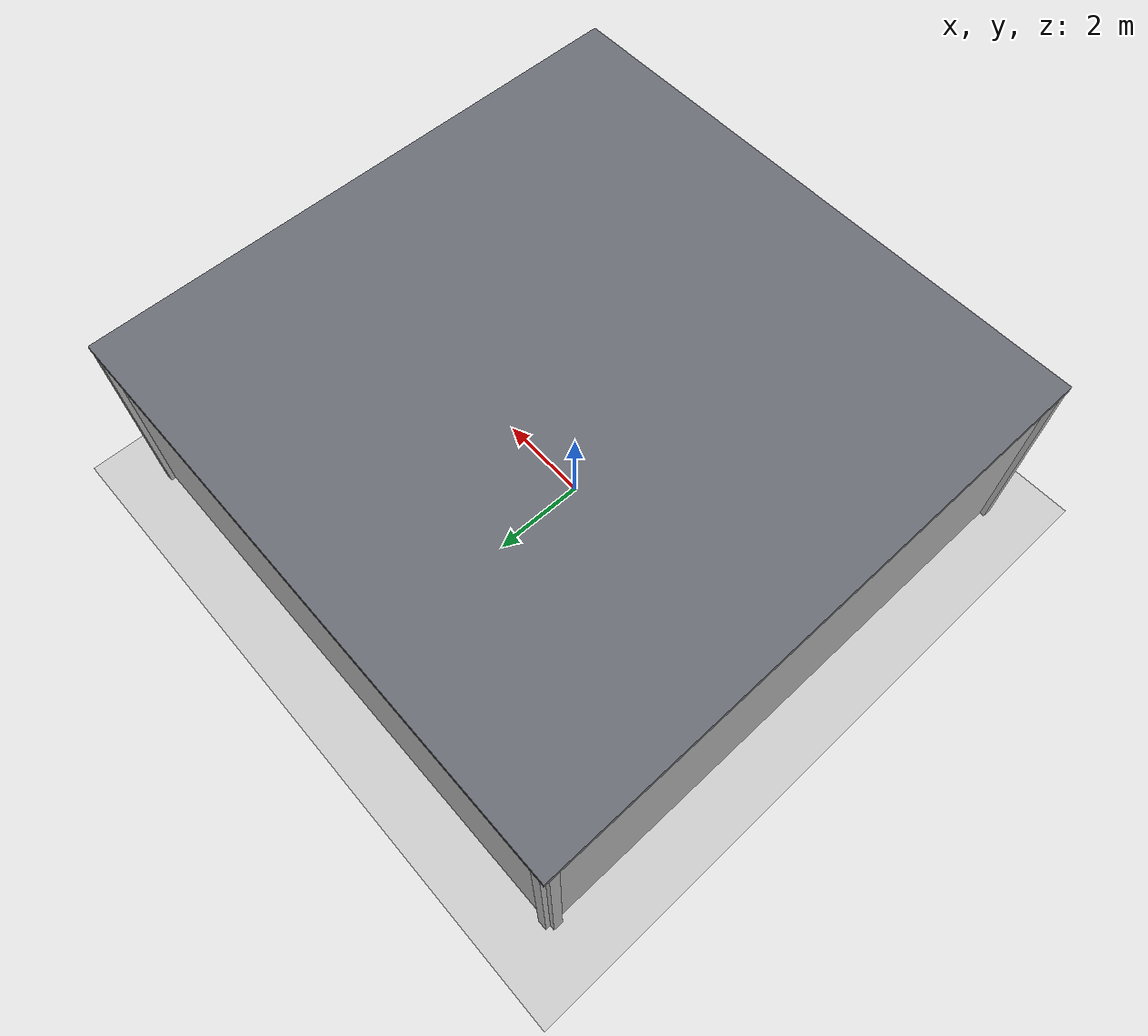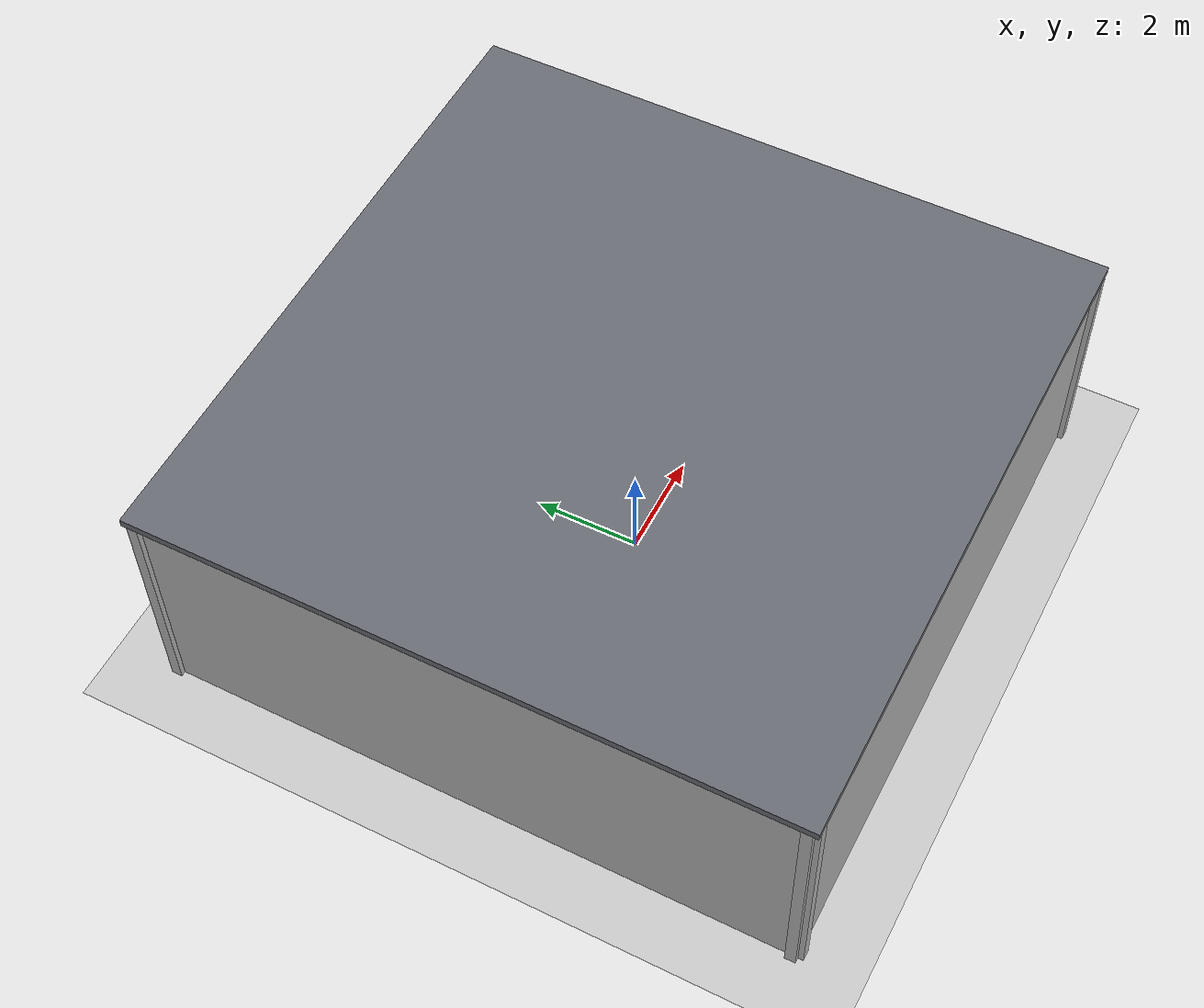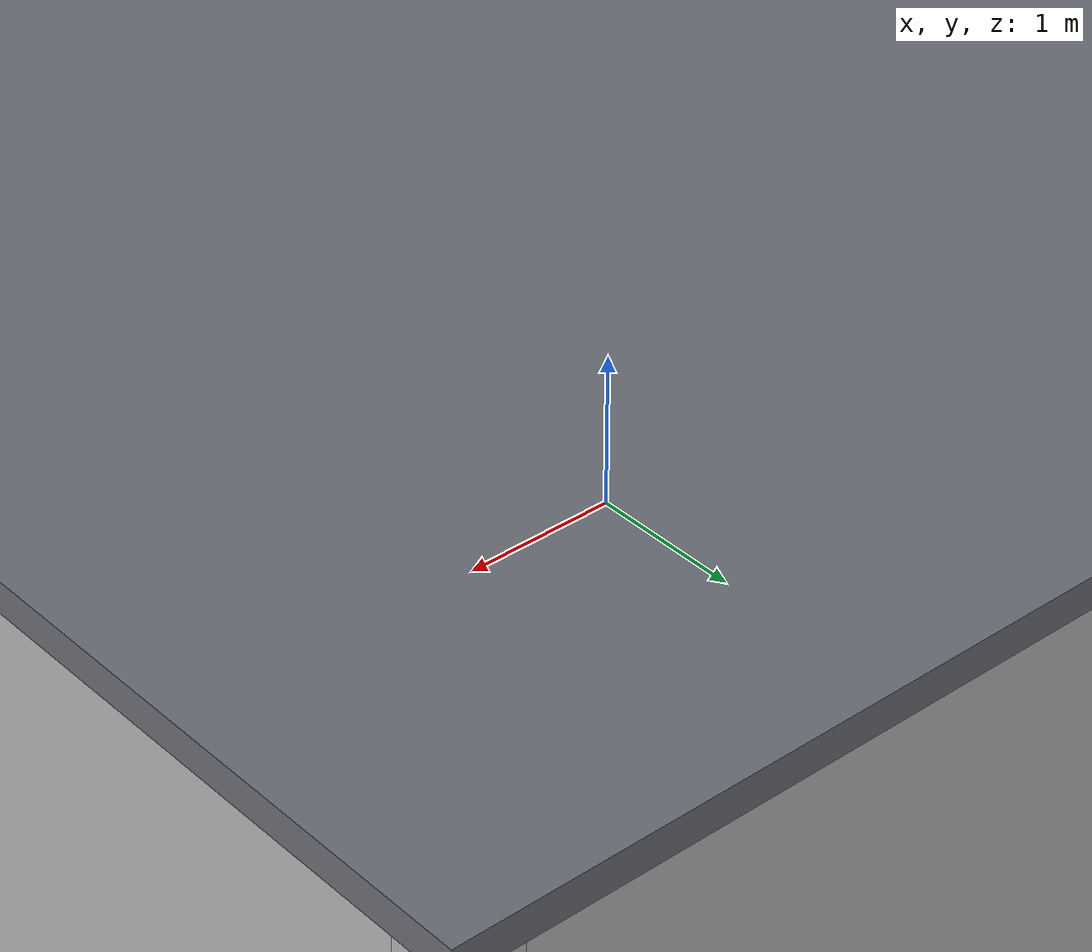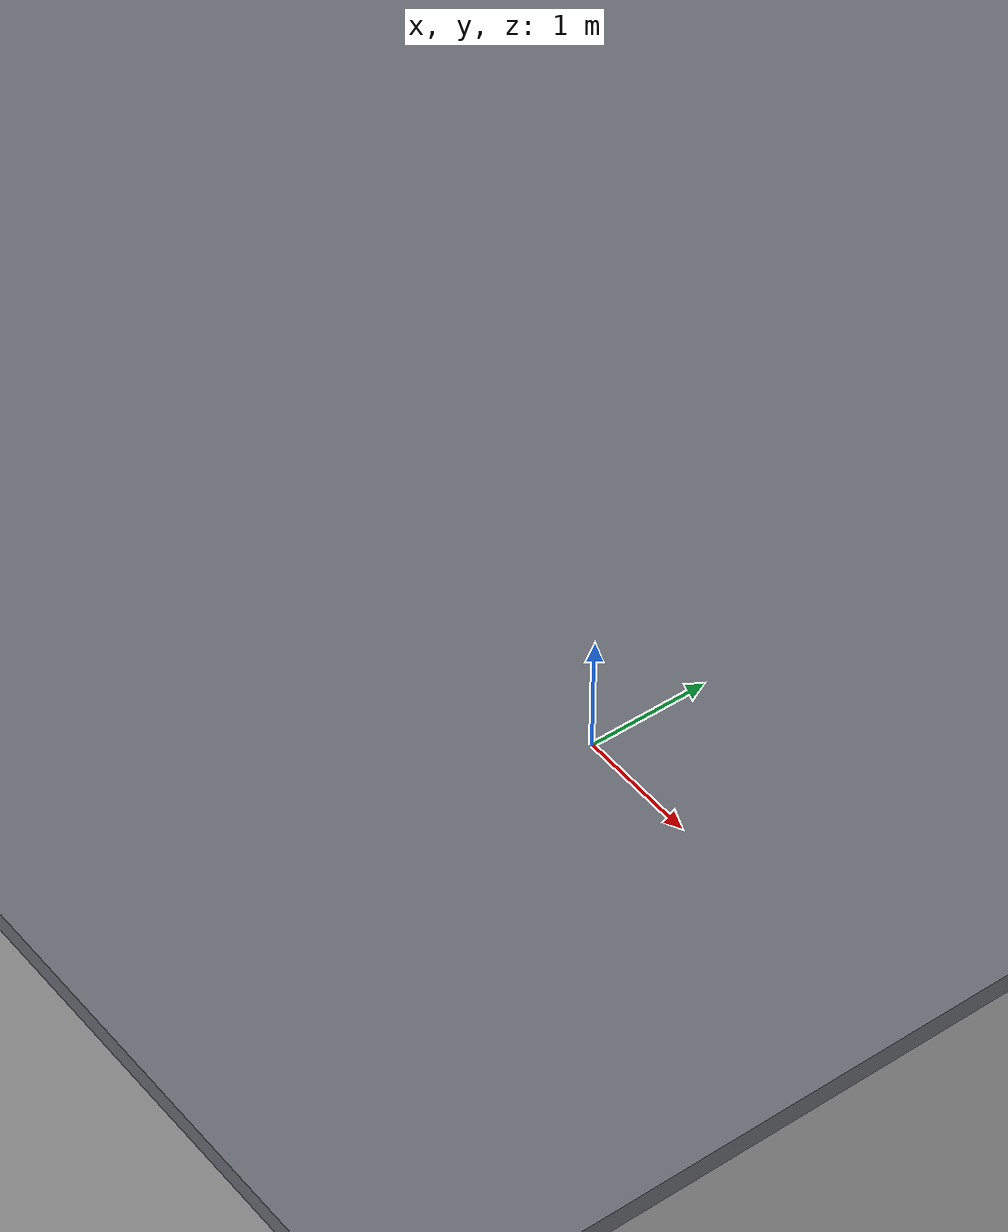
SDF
<?xml version="1.0"?>
<sdf version="1.6">
  <world name="mrf_sorting">

    <gravity>0 0 -9.81</gravity>

    <physics name="default" type="ode">
      <max_step_size>0.001</max_step_size>
      <real_time_update_rate>1000</real_time_update_rate>
    </physics>

    <scene>
      <ambient>0.32 0.32 0.34 1</ambient>
      <background>0.70 0.72 0.75 1</background>
      <shadows>false</shadows>
      <!-- procedural blue sky with drifting white clouds (rendered by the
           Gazebo client; replaces the plain grey background outside) -->
      <sky>
        <clouds>
          <speed>8</speed>
          <direction>1.2</direction>
          <humidity>0.55</humidity>
          <mean_size>0.7</mean_size>
        </clouds>
      </sky>
    </scene>

    <plugin name="gazebo_ros_state" filename="libgazebo_ros_state.so">
      <ros><namespace>/gazebo</namespace></ros>
      <update_rate>50.0</update_rate>
    </plugin>

    <!-- soft, shadowless key light (replaces the default sun) -->
    <light name="sun" type="directional">
      <pose>0 0 12 0 0 0</pose>
      <diffuse>0.42 0.42 0.40 1</diffuse>
      <specular>0.05 0.05 0.05 1</specular>
      <direction>-0.3 0.35 -1</direction>
      <cast_shadows>false</cast_shadows>
    </light>
    <!-- industrial concrete floor (replaces the default grey ground_plane) -->
    <include><uri>model://concrete_floor</uri></include>

    <light name="fill_light" type="directional">
      <pose>-3 -3 6 0 0 0</pose>
      <diffuse>0.12 0.12 0.13 1</diffuse>
      <specular>0.02 0.02 0.02 1</specular>
      <direction>0.4 0.4 -1</direction>
      <cast_shadows>false</cast_shadows>
    </light>

    <!-- ================= robot pedestals (white stands) ================= -->
    <model name="robot_pedestal">
      <static>true</static>
      <pose>0 0 0.4 0 0 0</pose>
      <link name="link">
        <visual name="v">
          <geometry><box><size>0.5 0.5 0.8</size></box></geometry>
          <material><ambient>0.9 0.9 0.9 1</ambient><diffuse>0.95 0.95 0.95 1</diffuse></material>
        </visual>
        <collision name="c">
          <geometry><box><size>0.5 0.5 0.8</size></box></geometry>
        </collision>
      </link>
    </model>

    <!-- ================= conveyor belt ================= -->
    <model name="conveyor_belt">
      <static>true</static>
      <pose>0 -0.55 0 0 0 0</pose>
      <link name="link">
        <!-- belt surface (top at z=0.85) -->
        <visual name="belt">
          <pose>0 0 0.825 0 0 0</pose>
          <geometry><box><size>3.0 0.5 0.05</size></box></geometry>
          <material><ambient>0.2 0.2 0.2 1</ambient><diffuse>0.25 0.25 0.25 1</diffuse></material>
        </visual>
        <collision name="belt_c">
          <pose>0 0 0.825 0 0 0</pose>
          <geometry><box><size>3.0 0.5 0.05</size></box></geometry>
        </collision>
        <!-- side rails -->
        <visual name="rail_n">
          <pose>0 0.26 0.86 0 0 0</pose>
          <geometry><box><size>3.0 0.03 0.06</size></box></geometry>
          <material><ambient>0.6 0.6 0.6 1</ambient><diffuse>0.7 0.7 0.7 1</diffuse></material>
        </visual>
        <visual name="rail_s">
          <pose>0 -0.26 0.86 0 0 0</pose>
          <geometry><box><size>3.0 0.03 0.06</size></box></geometry>
          <material><ambient>0.6 0.6 0.6 1</ambient><diffuse>0.7 0.7 0.7 1</diffuse></material>
        </visual>
        <!-- legs -->
        <visual name="leg1"><pose>-1.4 0 0.4 0 0 0</pose><geometry><box><size>0.06 0.5 0.8</size></box></geometry><material><ambient>0.5 0.5 0.5 1</ambient></material></visual>
        <visual name="leg2"><pose>1.4 0 0.4 0 0 0</pose><geometry><box><size>0.06 0.5 0.8</size></box></geometry><material><ambient>0.5 0.5 0.5 1</ambient></material></visual>
      </link>
    </model>
    <!-- wire-mesh safety guarding around the cell -->
    <include><uri>model://safety_fence</uri></include>
    <!-- WAREHOUSE BEGIN -->
    <include><uri>model://warehouse</uri></include>
    <light name="pendant0" type="point">
      <pose>-3 -3 3.40 0 0 0</pose>
      <diffuse>0.22 0.21 0.19 1</diffuse>
      <specular>0.02 0.02 0.02 1</specular>
      <attenuation><range>9</range><constant>0.6</constant><linear>0.18</linear><quadratic>0.04</quadratic></attenuation>
      <cast_shadows>false</cast_shadows>
    </light>
    <light name="pendant1" type="point">
      <pose>-3 3 3.40 0 0 0</pose>
      <diffuse>0.22 0.21 0.19 1</diffuse>
      <specular>0.02 0.02 0.02 1</specular>
      <attenuation><range>9</range><constant>0.6</constant><linear>0.18</linear><quadratic>0.04</quadratic></attenuation>
      <cast_shadows>false</cast_shadows>
    </light>
    <light name="pendant2" type="point">
      <pose>0 -3 3.40 0 0 0</pose>
      <diffuse>0.22 0.21 0.19 1</diffuse>
      <specular>0.02 0.02 0.02 1</specular>
      <attenuation><range>9</range><constant>0.6</constant><linear>0.18</linear><quadratic>0.04</quadratic></attenuation>
      <cast_shadows>false</cast_shadows>
    </light>
    <light name="pendant3" type="point">
      <pose>0 3 3.40 0 0 0</pose>
      <diffuse>0.22 0.21 0.19 1</diffuse>
      <specular>0.02 0.02 0.02 1</specular>
      <attenuation><range>9</range><constant>0.6</constant><linear>0.18</linear><quadratic>0.04</quadratic></attenuation>
      <cast_shadows>false</cast_shadows>
    </light>
    <light name="pendant4" type="point">
      <pose>3 -3 3.40 0 0 0</pose>
      <diffuse>0.22 0.21 0.19 1</diffuse>
      <specular>0.02 0.02 0.02 1</specular>
      <attenuation><range>9</range><constant>0.6</constant><linear>0.18</linear><quadratic>0.04</quadratic></attenuation>
      <cast_shadows>false</cast_shadows>
    </light>
    <light name="pendant5" type="point">
      <pose>3 3 3.40 0 0 0</pose>
      <diffuse>0.22 0.21 0.19 1</diffuse>
      <specular>0.02 0.02 0.02 1</specular>
      <attenuation><range>9</range><constant>0.6</constant><linear>0.18</linear><quadratic>0.04</quadratic></attenuation>
      <cast_shadows>false</cast_shadows>
    </light>
    <!-- WAREHOUSE END -->
    <!-- four colour-coded labeled recycling bins -->
    <include><uri>model://recycle_bins</uri></include>

  </world>
</sdf>

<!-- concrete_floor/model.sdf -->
<sdf version="1.6">
  <model name="concrete_floor">
    <static>true</static>
    <link name="link">
      <collision name="collision">
        <geometry>
          <plane><normal>0 0 1</normal><size>100 100</size></plane>
        </geometry>
        <surface>
          <friction>
            <ode><mu>1.0</mu><mu2>1.0</mu2></ode>
          </friction>
        </surface>
      </collision>
      <visual name="visual">
        <cast_shadows>false</cast_shadows>
        <geometry>
          <plane><normal>0 0 1</normal><size>100 100</size></plane>
        </geometry>
        <material>
          <script>
            <uri>model://concrete_floor/materials/scripts</uri>
            <uri>model://concrete_floor/materials/textures</uri>
            <name>MRF/Concrete</name>
          </script>
        </material>
      </visual>
    </link>
  </model>
</sdf>

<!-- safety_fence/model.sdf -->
<sdf version="1.6">
  <model name="safety_fence">
    <static>true</static>
    <link name="link">
      <visual name="post0_v">
        <pose>-2.100 -2.000 0.600 0 0 0</pose>
        <geometry><box><size>0.090 0.090 1.200</size></box></geometry>
        <material><ambient>1.0 0.45 0.02 1.0</ambient><diffuse>1.0 0.45 0.02 1.0</diffuse></material>
      </visual>
      <collision name="post0_c">
        <pose>-2.100 -2.000 0.600 0 0 0</pose>
        <geometry><box><size>0.090 0.090 1.200</size></box></geometry>
      </collision>
      <visual name="post1_v">
        <pose>-2.100 -0.950 0.600 0 0 0</pose>
        <geometry><box><size>0.090 0.090 1.200</size></box></geometry>
        <material><ambient>1.0 0.45 0.02 1.0</ambient><diffuse>1.0 0.45 0.02 1.0</diffuse></material>
      </visual>
      <collision name="post1_c">
        <pose>-2.100 -0.950 0.600 0 0 0</pose>
        <geometry><box><size>0.090 0.090 1.200</size></box></geometry>
      </collision>
      <visual name="post2_v">
        <pose>-2.100 -0.150 0.600 0 0 0</pose>
        <geometry><box><size>0.090 0.090 1.200</size></box></geometry>
        <material><ambient>1.0 0.45 0.02 1.0</ambient><diffuse>1.0 0.45 0.02 1.0</diffuse></material>
      </visual>
      <collision name="post2_c">
        <pose>-2.100 -0.150 0.600 0 0 0</pose>
        <geometry><box><size>0.090 0.090 1.200</size></box></geometry>
      </collision>
      <visual name="post3_v">
        <pose>-2.100 1.000 0.600 0 0 0</pose>
        <geometry><box><size>0.090 0.090 1.200</size></box></geometry>
        <material><ambient>1.0 0.45 0.02 1.0</ambient><diffuse>1.0 0.45 0.02 1.0</diffuse></material>
      </visual>
      <collision name="post3_c">
        <pose>-2.100 1.000 0.600 0 0 0</pose>
        <geometry><box><size>0.090 0.090 1.200</size></box></geometry>
      </collision>
      <visual name="post4_v">
        <pose>-1.100 -2.000 0.600 0 0 0</pose>
        <geometry><box><size>0.090 0.090 1.200</size></box></geometry>
        <material><ambient>1.0 0.45 0.02 1.0</ambient><diffuse>1.0 0.45 0.02 1.0</diffuse></material>
      </visual>
      <collision name="post4_c">
        <pose>-1.100 -2.000 0.600 0 0 0</pose>
        <geometry><box><size>0.090 0.090 1.200</size></box></geometry>
      </collision>
      <visual name="post5_v">
        <pose>-1.100 1.000 0.600 0 0 0</pose>
        <geometry><box><size>0.090 0.090 1.200</size></box></geometry>
        <material><ambient>1.0 0.45 0.02 1.0</ambient><diffuse>1.0 0.45 0.02 1.0</diffuse></material>
      </visual>
      <collision name="post5_c">
        <pose>-1.100 1.000 0.600 0 0 0</pose>
        <geometry><box><size>0.090 0.090 1.200</size></box></geometry>
      </collision>
      <visual name="post6_v">
        <pose>-0.100 -2.000 0.600 0 0 0</pose>
        <geometry><box><size>0.090 0.090 1.200</size></box></geometry>
        <material><ambient>1.0 0.45 0.02 1.0</ambient><diffuse>1.0 0.45 0.02 1.0</diffuse></material>
      </visual>
      <collision name="post6_c">
        <pose>-0.100 -2.000 0.600 0 0 0</pose>
        <geometry><box><size>0.090 0.090 1.200</size></box></geometry>
      </collision>
      <visual name="post7_v">
        <pose>-0.100 1.000 0.600 0 0 0</pose>
        <geometry><box><size>0.090 0.090 1.200</size></box></geometry>
        <material><ambient>1.0 0.45 0.02 1.0</ambient><diffuse>1.0 0.45 0.02 1.0</diffuse></material>
      </visual>
      <collision name="post7_c">
        <pose>-0.100 1.000 0.600 0 0 0</pose>
        <geometry><box><size>0.090 0.090 1.200</size></box></geometry>
      </collision>
      <visual name="post8_v">
        <pose>0.900 -2.000 0.600 0 0 0</pose>
        <geometry><box><size>0.090 0.090 1.200</size></box></geometry>
        <material><ambient>1.0 0.45 0.02 1.0</ambient><diffuse>1.0 0.45 0.02 1.0</diffuse></material>
      </visual>
      <collision name="post8_c">
        <pose>0.900 -2.000 0.600 0 0 0</pose>
        <geometry><box><size>0.090 0.090 1.200</size></box></geometry>
      </collision>
      <visual name="post9_v">
        <pose>0.900 1.000 0.600 0 0 0</pose>
        <geometry><box><size>0.090 0.090 1.200</size></box></geometry>
        <material><ambient>1.0 0.45 0.02 1.0</ambient><diffuse>1.0 0.45 0.02 1.0</diffuse></material>
      </visual>
      <collision name="post9_c">
        <pose>0.900 1.000 0.600 0 0 0</pose>
        <geometry><box><size>0.090 0.090 1.200</size></box></geometry>
      </collision>
      <visual name="post10_v">
        <pose>1.900 -2.000 0.600 0 0 0</pose>
        <geometry><box><size>0.090 0.090 1.200</size></box></geometry>
        <material><ambient>1.0 0.45 0.02 1.0</ambient><diffuse>1.0 0.45 0.02 1.0</diffuse></material>
      </visual>
      <collision name="post10_c">
        <pose>1.900 -2.000 0.600 0 0 0</pose>
        <geometry><box><size>0.090 0.090 1.200</size></box></geometry>
      </collision>
      <visual name="post11_v">
        <pose>1.900 1.000 0.600 0 0 0</pose>
        <geometry><box><size>0.090 0.090 1.200</size></box></geometry>
        <material><ambient>1.0 0.45 0.02 1.0</ambient><diffuse>1.0 0.45 0.02 1.0</diffuse></material>
      </visual>
      <collision name="post11_c">
        <pose>1.900 1.000 0.600 0 0 0</pose>
        <geometry><box><size>0.090 0.090 1.200</size></box></geometry>
      </collision>
      <visual name="post12_v">
        <pose>2.300 -2.000 0.600 0 0 0</pose>
        <geometry><box><size>0.090 0.090 1.200</size></box></geometry>
        <material><ambient>1.0 0.45 0.02 1.0</ambient><diffuse>1.0 0.45 0.02 1.0</diffuse></material>
      </visual>
      <collision name="post12_c">
        <pose>2.300 -2.000 0.600 0 0 0</pose>
        <geometry><box><size>0.090 0.090 1.200</size></box></geometry>
      </collision>
      <visual name="post13_v">
        <pose>2.300 -0.950 0.600 0 0 0</pose>
        <geometry><box><size>0.090 0.090 1.200</size></box></geometry>
        <material><ambient>1.0 0.45 0.02 1.0</ambient><diffuse>1.0 0.45 0.02 1.0</diffuse></material>
      </visual>
      <collision name="post13_c">
        <pose>2.300 -0.950 0.600 0 0 0</pose>
        <geometry><box><size>0.090 0.090 1.200</size></box></geometry>
      </collision>
      <visual name="post14_v">
        <pose>2.300 -0.150 0.600 0 0 0</pose>
        <geometry><box><size>0.090 0.090 1.200</size></box></geometry>
        <material><ambient>1.0 0.45 0.02 1.0</ambient><diffuse>1.0 0.45 0.02 1.0</diffuse></material>
      </visual>
      <collision name="post14_c">
        <pose>2.300 -0.150 0.600 0 0 0</pose>
        <geometry><box><size>0.090 0.090 1.200</size></box></geometry>
      </collision>
      <visual name="post15_v">
        <pose>2.300 1.000 0.600 0 0 0</pose>
        <geometry><box><size>0.090 0.090 1.200</size></box></geometry>
        <material><ambient>1.0 0.45 0.02 1.0</ambient><diffuse>1.0 0.45 0.02 1.0</diffuse></material>
      </visual>
      <collision name="post15_c">
        <pose>2.300 1.000 0.600 0 0 0</pose>
        <geometry><box><size>0.090 0.090 1.200</size></box></geometry>
      </collision>
      <visual name="n0_panel_v">
        <pose>-1.600 1.000 0.600 0 0 0</pose>
        <geometry><box><size>0.910 0.020 1.000</size></box></geometry>
        <material><script>
          <uri>model://safety_fence/materials/scripts</uri>
          <uri>model://safety_fence/materials/textures</uri>
          <name>MRF/WireMesh</name>
        </script></material>
      </visual>
      <collision name="n0_panel_c">
        <pose>-1.600 1.000 0.600 0 0 0</pose>
        <geometry><box><size>0.910 0.020 1.000</size></box></geometry>
      </collision>
      <visual name="n0_rtop_v">
        <pose>-1.600 1.000 1.160 0 0 0</pose>
        <geometry><box><size>0.910 0.050 0.050</size></box></geometry>
        <material><ambient>1.0 0.45 0.02 1.0</ambient><diffuse>1.0 0.45 0.02 1.0</diffuse></material>
      </visual>
      <visual name="n0_rbot_v">
        <pose>-1.600 1.000 0.100 0 0 0</pose>
        <geometry><box><size>0.910 0.050 0.050</size></box></geometry>
        <material><ambient>1.0 0.45 0.02 1.0</ambient><diffuse>1.0 0.45 0.02 1.0</diffuse></material>
      </visual>
      <visual name="s0_panel_v">
        <pose>-1.600 -2.000 0.600 0 0 0</pose>
        <geometry><box><size>0.910 0.020 1.000</size></box></geometry>
        <material><script>
          <uri>model://safety_fence/materials/scripts</uri>
          <uri>model://safety_fence/materials/textures</uri>
          <name>MRF/WireMesh</name>
        </script></material>
      </visual>
      <collision name="s0_panel_c">
        <pose>-1.600 -2.000 0.600 0 0 0</pose>
        <geometry><box><size>0.910 0.020 1.000</size></box></geometry>
      </collision>
      <visual name="s0_rtop_v">
        <pose>-1.600 -2.000 1.160 0 0 0</pose>
        <geometry><box><size>0.910 0.050 0.050</size></box></geometry>
        <material><ambient>1.0 0.45 0.02 1.0</ambient><diffuse>1.0 0.45 0.02 1.0</diffuse></material>
      </visual>
      <visual name="s0_rbot_v">
        <pose>-1.600 -2.000 0.100 0 0 0</pose>
        <geometry><box><size>0.910 0.050 0.050</size></box></geometry>
        <material><ambient>1.0 0.45 0.02 1.0</ambient><diffuse>1.0 0.45 0.02 1.0</diffuse></material>
      </visual>
      <visual name="n1_panel_v">
        <pose>-0.600 1.000 0.600 0 0 0</pose>
        <geometry><box><size>0.910 0.020 1.000</size></box></geometry>
        <material><script>
          <uri>model://safety_fence/materials/scripts</uri>
          <uri>model://safety_fence/materials/textures</uri>
          <name>MRF/WireMesh</name>
        </script></material>
      </visual>
      <collision name="n1_panel_c">
        <pose>-0.600 1.000 0.600 0 0 0</pose>
        <geometry><box><size>0.910 0.020 1.000</size></box></geometry>
      </collision>
      <visual name="n1_rtop_v">
        <pose>-0.600 1.000 1.160 0 0 0</pose>
        <geometry><box><size>0.910 0.050 0.050</size></box></geometry>
        <material><ambient>1.0 0.45 0.02 1.0</ambient><diffuse>1.0 0.45 0.02 1.0</diffuse></material>
      </visual>
      <visual name="n1_rbot_v">
        <pose>-0.600 1.000 0.100 0 0 0</pose>
        <geometry><box><size>0.910 0.050 0.050</size></box></geometry>
        <material><ambient>1.0 0.45 0.02 1.0</ambient><diffuse>1.0 0.45 0.02 1.0</diffuse></material>
      </visual>
      <visual name="s1_panel_v">
        <pose>-0.600 -2.000 0.600 0 0 0</pose>
        <geometry><box><size>0.910 0.020 1.000</size></box></geometry>
        <material><script>
          <uri>model://safety_fence/materials/scripts</uri>
          <uri>model://safety_fence/materials/textures</uri>
          <name>MRF/WireMesh</name>
        </script></material>
      </visual>
      <collision name="s1_panel_c">
        <pose>-0.600 -2.000 0.600 0 0 0</pose>
        <geometry><box><size>0.910 0.020 1.000</size></box></geometry>
      </collision>
      <visual name="s1_rtop_v">
        <pose>-0.600 -2.000 1.160 0 0 0</pose>
        <geometry><box><size>0.910 0.050 0.050</size></box></geometry>
        <material><ambient>1.0 0.45 0.02 1.0</ambient><diffuse>1.0 0.45 0.02 1.0</diffuse></material>
      </visual>
      <visual name="s1_rbot_v">
        <pose>-0.600 -2.000 0.100 0 0 0</pose>
        <geometry><box><size>0.910 0.050 0.050</size></box></geometry>
        <material><ambient>1.0 0.45 0.02 1.0</ambient><diffuse>1.0 0.45 0.02 1.0</diffuse></material>
      </visual>
      <visual name="n2_panel_v">
        <pose>0.400 1.000 0.600 0 0 0</pose>
        <geometry><box><size>0.910 0.020 1.000</size></box></geometry>
        <material><script>
          <uri>model://safety_fence/materials/scripts</uri>
          <uri>model://safety_fence/materials/textures</uri>
          <name>MRF/WireMesh</name>
        </script></material>
      </visual>
      <collision name="n2_panel_c">
        <pose>0.400 1.000 0.600 0 0 0</pose>
        <geometry><box><size>0.910 0.020 1.000</size></box></geometry>
      </collision>
      <visual name="n2_rtop_v">
        <pose>0.400 1.000 1.160 0 0 0</pose>
        <geometry><box><size>0.910 0.050 0.050</size></box></geometry>
        <material><ambient>1.0 0.45 0.02 1.0</ambient><diffuse>1.0 0.45 0.02 1.0</diffuse></material>
      </visual>
      <visual name="n2_rbot_v">
        <pose>0.400 1.000 0.100 0 0 0</pose>
        <geometry><box><size>0.910 0.050 0.050</size></box></geometry>
        <material><ambient>1.0 0.45 0.02 1.0</ambient><diffuse>1.0 0.45 0.02 1.0</diffuse></material>
      </visual>
      <visual name="s2_panel_v">
        <pose>0.400 -2.000 0.600 0 0 0</pose>
        <geometry><box><size>0.910 0.020 1.000</size></box></geometry>
        <material><script>
          <uri>model://safety_fence/materials/scripts</uri>
          <uri>model://safety_fence/materials/textures</uri>
          <name>MRF/WireMesh</name>
        </script></material>
      </visual>
      <collision name="s2_panel_c">
        <pose>0.400 -2.000 0.600 0 0 0</pose>
        <geometry><box><size>0.910 0.020 1.000</size></box></geometry>
      </collision>
      <visual name="s2_rtop_v">
        <pose>0.400 -2.000 1.160 0 0 0</pose>
        <geometry><box><size>0.910 0.050 0.050</size></box></geometry>
        <material><ambient>1.0 0.45 0.02 1.0</ambient><diffuse>1.0 0.45 0.02 1.0</diffuse></material>
      </visual>
      <visual name="s2_rbot_v">
        <pose>0.400 -2.000 0.100 0 0 0</pose>
        <geometry><box><size>0.910 0.050 0.050</size></box></geometry>
        <material><ambient>1.0 0.45 0.02 1.0</ambient><diffuse>1.0 0.45 0.02 1.0</diffuse></material>
      </visual>
      <visual name="n3_panel_v">
        <pose>1.400 1.000 0.600 0 0 0</pose>
        <geometry><box><size>0.910 0.020 1.000</size></box></geometry>
        <material><script>
          <uri>model://safety_fence/materials/scripts</uri>
          <uri>model://safety_fence/materials/textures</uri>
          <name>MRF/WireMesh</name>
        </script></material>
      </visual>
      <collision name="n3_panel_c">
        <pose>1.400 1.000 0.600 0 0 0</pose>
        <geometry><box><size>0.910 0.020 1.000</size></box></geometry>
      </collision>
      <visual name="n3_rtop_v">
        <pose>1.400 1.000 1.160 0 0 0</pose>
        <geometry><box><size>0.910 0.050 0.050</size></box></geometry>
        <material><ambient>1.0 0.45 0.02 1.0</ambient><diffuse>1.0 0.45 0.02 1.0</diffuse></material>
      </visual>
      <visual name="n3_rbot_v">
        <pose>1.400 1.000 0.100 0 0 0</pose>
        <geometry><box><size>0.910 0.050 0.050</size></box></geometry>
        <material><ambient>1.0 0.45 0.02 1.0</ambient><diffuse>1.0 0.45 0.02 1.0</diffuse></material>
      </visual>
      <visual name="s3_panel_v">
        <pose>1.400 -2.000 0.600 0 0 0</pose>
        <geometry><box><size>0.910 0.020 1.000</size></box></geometry>
        <material><script>
          <uri>model://safety_fence/materials/scripts</uri>
          <uri>model://safety_fence/materials/textures</uri>
          <name>MRF/WireMesh</name>
        </script></material>
      </visual>
      <collision name="s3_panel_c">
        <pose>1.400 -2.000 0.600 0 0 0</pose>
        <geometry><box><size>0.910 0.020 1.000</size></box></geometry>
      </collision>
      <visual name="s3_rtop_v">
        <pose>1.400 -2.000 1.160 0 0 0</pose>
        <geometry><box><size>0.910 0.050 0.050</size></box></geometry>
        <material><ambient>1.0 0.45 0.02 1.0</ambient><diffuse>1.0 0.45 0.02 1.0</diffuse></material>
      </visual>
      <visual name="s3_rbot_v">
        <pose>1.400 -2.000 0.100 0 0 0</pose>
        <geometry><box><size>0.910 0.050 0.050</size></box></geometry>
        <material><ambient>1.0 0.45 0.02 1.0</ambient><diffuse>1.0 0.45 0.02 1.0</diffuse></material>
      </visual>
      <visual name="n4_panel_v">
        <pose>2.100 1.000 0.600 0 0 0</pose>
        <geometry><box><size>0.310 0.020 1.000</size></box></geometry>
        <material><script>
          <uri>model://safety_fence/materials/scripts</uri>
          <uri>model://safety_fence/materials/textures</uri>
          <name>MRF/WireMesh</name>
        </script></material>
      </visual>
      <collision name="n4_panel_c">
        <pose>2.100 1.000 0.600 0 0 0</pose>
        <geometry><box><size>0.310 0.020 1.000</size></box></geometry>
      </collision>
      <visual name="n4_rtop_v">
        <pose>2.100 1.000 1.160 0 0 0</pose>
        <geometry><box><size>0.310 0.050 0.050</size></box></geometry>
        <material><ambient>1.0 0.45 0.02 1.0</ambient><diffuse>1.0 0.45 0.02 1.0</diffuse></material>
      </visual>
      <visual name="n4_rbot_v">
        <pose>2.100 1.000 0.100 0 0 0</pose>
        <geometry><box><size>0.310 0.050 0.050</size></box></geometry>
        <material><ambient>1.0 0.45 0.02 1.0</ambient><diffuse>1.0 0.45 0.02 1.0</diffuse></material>
      </visual>
      <visual name="s4_panel_v">
        <pose>2.100 -2.000 0.600 0 0 0</pose>
        <geometry><box><size>0.310 0.020 1.000</size></box></geometry>
        <material><script>
          <uri>model://safety_fence/materials/scripts</uri>
          <uri>model://safety_fence/materials/textures</uri>
          <name>MRF/WireMesh</name>
        </script></material>
      </visual>
      <collision name="s4_panel_c">
        <pose>2.100 -2.000 0.600 0 0 0</pose>
        <geometry><box><size>0.310 0.020 1.000</size></box></geometry>
      </collision>
      <visual name="s4_rtop_v">
        <pose>2.100 -2.000 1.160 0 0 0</pose>
        <geometry><box><size>0.310 0.050 0.050</size></box></geometry>
        <material><ambient>1.0 0.45 0.02 1.0</ambient><diffuse>1.0 0.45 0.02 1.0</diffuse></material>
      </visual>
      <visual name="s4_rbot_v">
        <pose>2.100 -2.000 0.100 0 0 0</pose>
        <geometry><box><size>0.310 0.050 0.050</size></box></geometry>
        <material><ambient>1.0 0.45 0.02 1.0</ambient><diffuse>1.0 0.45 0.02 1.0</diffuse></material>
      </visual>
      <visual name="w0_panel_v">
        <pose>-2.100 0.425 0.600 0 0 0</pose>
        <geometry><box><size>0.020 1.060 1.000</size></box></geometry>
        <material><script>
          <uri>model://safety_fence/materials/scripts</uri>
          <uri>model://safety_fence/materials/textures</uri>
          <name>MRF/WireMesh</name>
        </script></material>
      </visual>
      <collision name="w0_panel_c">
        <pose>-2.100 0.425 0.600 0 0 0</pose>
        <geometry><box><size>0.020 1.060 1.000</size></box></geometry>
      </collision>
      <visual name="w0_rtop_v">
        <pose>-2.100 0.425 1.160 0 0 0</pose>
        <geometry><box><size>0.050 1.060 0.050</size></box></geometry>
        <material><ambient>1.0 0.45 0.02 1.0</ambient><diffuse>1.0 0.45 0.02 1.0</diffuse></material>
      </visual>
      <visual name="w0_rbot_v">
        <pose>-2.100 0.425 0.100 0 0 0</pose>
        <geometry><box><size>0.050 1.060 0.050</size></box></geometry>
        <material><ambient>1.0 0.45 0.02 1.0</ambient><diffuse>1.0 0.45 0.02 1.0</diffuse></material>
      </visual>
      <visual name="e0_panel_v">
        <pose>2.300 0.425 0.600 0 0 0</pose>
        <geometry><box><size>0.020 1.060 1.000</size></box></geometry>
        <material><script>
          <uri>model://safety_fence/materials/scripts</uri>
          <uri>model://safety_fence/materials/textures</uri>
          <name>MRF/WireMesh</name>
        </script></material>
      </visual>
      <collision name="e0_panel_c">
        <pose>2.300 0.425 0.600 0 0 0</pose>
        <geometry><box><size>0.020 1.060 1.000</size></box></geometry>
      </collision>
      <visual name="e0_rtop_v">
        <pose>2.300 0.425 1.160 0 0 0</pose>
        <geometry><box><size>0.050 1.060 0.050</size></box></geometry>
        <material><ambient>1.0 0.45 0.02 1.0</ambient><diffuse>1.0 0.45 0.02 1.0</diffuse></material>
      </visual>
      <visual name="e0_rbot_v">
        <pose>2.300 0.425 0.100 0 0 0</pose>
        <geometry><box><size>0.050 1.060 0.050</size></box></geometry>
        <material><ambient>1.0 0.45 0.02 1.0</ambient><diffuse>1.0 0.45 0.02 1.0</diffuse></material>
      </visual>
      <visual name="w2_panel_v">
        <pose>-2.100 -1.475 0.600 0 0 0</pose>
        <geometry><box><size>0.020 0.960 1.000</size></box></geometry>
        <material><script>
          <uri>model://safety_fence/materials/scripts</uri>
          <uri>model://safety_fence/materials/textures</uri>
          <name>MRF/WireMesh</name>
        </script></material>
      </visual>
      <collision name="w2_panel_c">
        <pose>-2.100 -1.475 0.600 0 0 0</pose>
        <geometry><box><size>0.020 0.960 1.000</size></box></geometry>
      </collision>
      <visual name="w2_rtop_v">
        <pose>-2.100 -1.475 1.160 0 0 0</pose>
        <geometry><box><size>0.050 0.960 0.050</size></box></geometry>
        <material><ambient>1.0 0.45 0.02 1.0</ambient><diffuse>1.0 0.45 0.02 1.0</diffuse></material>
      </visual>
      <visual name="w2_rbot_v">
        <pose>-2.100 -1.475 0.100 0 0 0</pose>
        <geometry><box><size>0.050 0.960 0.050</size></box></geometry>
        <material><ambient>1.0 0.45 0.02 1.0</ambient><diffuse>1.0 0.45 0.02 1.0</diffuse></material>
      </visual>
      <visual name="e2_panel_v">
        <pose>2.300 -1.475 0.600 0 0 0</pose>
        <geometry><box><size>0.020 0.960 1.000</size></box></geometry>
        <material><script>
          <uri>model://safety_fence/materials/scripts</uri>
          <uri>model://safety_fence/materials/textures</uri>
          <name>MRF/WireMesh</name>
        </script></material>
      </visual>
      <collision name="e2_panel_c">
        <pose>2.300 -1.475 0.600 0 0 0</pose>
        <geometry><box><size>0.020 0.960 1.000</size></box></geometry>
      </collision>
      <visual name="e2_rtop_v">
        <pose>2.300 -1.475 1.160 0 0 0</pose>
        <geometry><box><size>0.050 0.960 0.050</size></box></geometry>
        <material><ambient>1.0 0.45 0.02 1.0</ambient><diffuse>1.0 0.45 0.02 1.0</diffuse></material>
      </visual>
      <visual name="e2_rbot_v">
        <pose>2.300 -1.475 0.100 0 0 0</pose>
        <geometry><box><size>0.050 0.960 0.050</size></box></geometry>
        <material><ambient>1.0 0.45 0.02 1.0</ambient><diffuse>1.0 0.45 0.02 1.0</diffuse></material>
      </visual>
      <visual name="sign1_v">
        <pose>0.400 -2.022 0.620 0 0 0</pose>
        <geometry><box><size>0.30 0.02 0.375</size></box></geometry>
        <material><script>
          <uri>model://safety_fence/materials/scripts</uri>
          <uri>model://safety_fence/materials/textures</uri>
          <name>MRF/CautionSign</name>
        </script></material>
      </visual>
      <visual name="sign2_v">
        <pose>1.400 -2.022 0.620 0 0 0</pose>
        <geometry><box><size>0.30 0.02 0.375</size></box></geometry>
        <material><script>
          <uri>model://safety_fence/materials/scripts</uri>
          <uri>model://safety_fence/materials/textures</uri>
          <name>MRF/CautionSign</name>
        </script></material>
      </visual>
    </link>
  </model>
</sdf>

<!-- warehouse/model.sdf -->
<sdf version="1.6">
  <model name="warehouse">
    <static>true</static>
    <link name="link">
      <visual name="wall_n_v">
        <pose>0 6.0 2.25 0 0 0</pose>
        <geometry><box><size>12.4 0.2 4.5</size></box></geometry>
        <material><script>
          <uri>model://warehouse/materials/scripts</uri>
          <uri>model://warehouse/materials/textures</uri>
          <name>MRF/WallConcrete</name></script></material>
      </visual>
      <collision name="wall_n_c">
        <pose>0 6.0 2.25 0 0 0</pose>
        <geometry><box><size>12.4 0.2 4.5</size></box></geometry>
      </collision>
      <visual name="wall_s_v">
        <pose>0 -6.0 2.25 0 0 0</pose>
        <geometry><box><size>12.4 0.2 4.5</size></box></geometry>
        <material><script>
          <uri>model://warehouse/materials/scripts</uri>
          <uri>model://warehouse/materials/textures</uri>
          <name>MRF/WallConcrete</name></script></material>
      </visual>
      <collision name="wall_s_c">
        <pose>0 -6.0 2.25 0 0 0</pose>
        <geometry><box><size>12.4 0.2 4.5</size></box></geometry>
      </collision>
      <visual name="wall_e_v">
        <pose>6.0 0 2.25 0 0 0</pose>
        <geometry><box><size>0.2 12.4 4.5</size></box></geometry>
        <material><script>
          <uri>model://warehouse/materials/scripts</uri>
          <uri>model://warehouse/materials/textures</uri>
          <name>MRF/WallConcrete</name></script></material>
      </visual>
      <collision name="wall_e_c">
        <pose>6.0 0 2.25 0 0 0</pose>
        <geometry><box><size>0.2 12.4 4.5</size></box></geometry>
      </collision>
      <visual name="wall_w_v">
        <pose>-6.0 0 2.25 0 0 0</pose>
        <geometry><box><size>0.2 12.4 4.5</size></box></geometry>
        <material><script>
          <uri>model://warehouse/materials/scripts</uri>
          <uri>model://warehouse/materials/textures</uri>
          <name>MRF/WallConcrete</name></script></material>
      </visual>
      <collision name="wall_w_c">
        <pose>-6.0 0 2.25 0 0 0</pose>
        <geometry><box><size>0.2 12.4 4.5</size></box></geometry>
      </collision>
      <visual name="roof_v">
        <pose>0 0 4.575 0 0 0</pose>
        <geometry><box><size>12.4 12.4 0.15</size></box></geometry>
        <material><ambient>0.32 0.33 0.35 1</ambient><diffuse>0.42 0.43 0.46 1</diffuse><specular>0.05 0.05 0.05 1 4</specular></material>
      </visual>
      <visual name="truss_x0_v">
        <pose>0 -4 4.2 0 0 0</pose>
        <geometry><box><size>12.0 0.1 0.22</size></box></geometry>
        <material><ambient>0.13 0.13 0.15 1</ambient><diffuse>0.18 0.18 0.20 1</diffuse><specular>0.05 0.05 0.05 1 4</specular></material>
      </visual>
      <visual name="truss_x1_v">
        <pose>0 0 4.2 0 0 0</pose>
        <geometry><box><size>12.0 0.1 0.22</size></box></geometry>
        <material><ambient>0.13 0.13 0.15 1</ambient><diffuse>0.18 0.18 0.20 1</diffuse><specular>0.05 0.05 0.05 1 4</specular></material>
      </visual>
      <visual name="truss_x2_v">
        <pose>0 4 4.2 0 0 0</pose>
        <geometry><box><size>12.0 0.1 0.22</size></box></geometry>
        <material><ambient>0.13 0.13 0.15 1</ambient><diffuse>0.18 0.18 0.20 1</diffuse><specular>0.05 0.05 0.05 1 4</specular></material>
      </visual>
      <visual name="truss_y0_v">
        <pose>-3 0 4.12 0 0 0</pose>
        <geometry><box><size>0.1 12.0 0.22</size></box></geometry>
        <material><ambient>0.13 0.13 0.15 1</ambient><diffuse>0.18 0.18 0.20 1</diffuse><specular>0.05 0.05 0.05 1 4</specular></material>
      </visual>
      <visual name="truss_y1_v">
        <pose>3 0 4.12 0 0 0</pose>
        <geometry><box><size>0.1 12.0 0.22</size></box></geometry>
        <material><ambient>0.13 0.13 0.15 1</ambient><diffuse>0.18 0.18 0.20 1</diffuse><specular>0.05 0.05 0.05 1 4</specular></material>
      </visual>
      <visual name="rod0_v">
        <pose>-3 -3 3.8 0 0 0</pose>
        <geometry><cylinder><radius>0.018</radius><length>0.5</length></cylinder></geometry>
        <material><ambient>0.13 0.13 0.15 1</ambient><diffuse>0.18 0.18 0.20 1</diffuse><specular>0.05 0.05 0.05 1 4</specular></material>
      </visual>
      <visual name="shade0_v">
        <pose>-3 -3 3.55 0 0 0</pose>
        <geometry><cylinder><radius>0.13</radius><length>0.1</length></cylinder></geometry>
        <material><ambient>0.13 0.13 0.15 1</ambient><diffuse>0.18 0.18 0.20 1</diffuse><specular>0.05 0.05 0.05 1 4</specular></material>
      </visual>
      <visual name="lamp0_v">
        <pose>-3 -3 3.5 0 0 0</pose>
        <geometry><cylinder><radius>0.1</radius><length>0.025</length></cylinder></geometry>
        <material><ambient>1 0.98 0.9 1</ambient><diffuse>1 0.98 0.9 1</diffuse><specular>0 0 0 1</specular><emissive>1 0.96 0.85 1</emissive></material>
      </visual>
      <visual name="rod1_v">
        <pose>-3 3 3.8 0 0 0</pose>
        <geometry><cylinder><radius>0.018</radius><length>0.5</length></cylinder></geometry>
        <material><ambient>0.13 0.13 0.15 1</ambient><diffuse>0.18 0.18 0.20 1</diffuse><specular>0.05 0.05 0.05 1 4</specular></material>
      </visual>
      <visual name="shade1_v">
        <pose>-3 3 3.55 0 0 0</pose>
        <geometry><cylinder><radius>0.13</radius><length>0.1</length></cylinder></geometry>
        <material><ambient>0.13 0.13 0.15 1</ambient><diffuse>0.18 0.18 0.20 1</diffuse><specular>0.05 0.05 0.05 1 4</specular></material>
      </visual>
      <visual name="lamp1_v">
        <pose>-3 3 3.5 0 0 0</pose>
        <geometry><cylinder><radius>0.1</radius><length>0.025</length></cylinder></geometry>
        <material><ambient>1 0.98 0.9 1</ambient><diffuse>1 0.98 0.9 1</diffuse><specular>0 0 0 1</specular><emissive>1 0.96 0.85 1</emissive></material>
      </visual>
      <visual name="rod2_v">
        <pose>0 -3 3.8 0 0 0</pose>
        <geometry><cylinder><radius>0.018</radius><length>0.5</length></cylinder></geometry>
        <material><ambient>0.13 0.13 0.15 1</ambient><diffuse>0.18 0.18 0.20 1</diffuse><specular>0.05 0.05 0.05 1 4</specular></material>
      </visual>
      <visual name="shade2_v">
        <pose>0 -3 3.55 0 0 0</pose>
        <geometry><cylinder><radius>0.13</radius><length>0.1</length></cylinder></geometry>
        <material><ambient>0.13 0.13 0.15 1</ambient><diffuse>0.18 0.18 0.20 1</diffuse><specular>0.05 0.05 0.05 1 4</specular></material>
      </visual>
      <visual name="lamp2_v">
        <pose>0 -3 3.5 0 0 0</pose>
        <geometry><cylinder><radius>0.1</radius><length>0.025</length></cylinder></geometry>
        <material><ambient>1 0.98 0.9 1</ambient><diffuse>1 0.98 0.9 1</diffuse><specular>0 0 0 1</specular><emissive>1 0.96 0.85 1</emissive></material>
      </visual>
      <visual name="rod3_v">
        <pose>0 3 3.8 0 0 0</pose>
        <geometry><cylinder><radius>0.018</radius><length>0.5</length></cylinder></geometry>
        <material><ambient>0.13 0.13 0.15 1</ambient><diffuse>0.18 0.18 0.20 1</diffuse><specular>0.05 0.05 0.05 1 4</specular></material>
      </visual>
      <visual name="shade3_v">
        <pose>0 3 3.55 0 0 0</pose>
        <geometry><cylinder><radius>0.13</radius><length>0.1</length></cylinder></geometry>
        <material><ambient>0.13 0.13 0.15 1</ambient><diffuse>0.18 0.18 0.20 1</diffuse><specular>0.05 0.05 0.05 1 4</specular></material>
      </visual>
      <visual name="lamp3_v">
        <pose>0 3 3.5 0 0 0</pose>
        <geometry><cylinder><radius>0.1</radius><length>0.025</length></cylinder></geometry>
        <material><ambient>1 0.98 0.9 1</ambient><diffuse>1 0.98 0.9 1</diffuse><specular>0 0 0 1</specular><emissive>1 0.96 0.85 1</emissive></material>
      </visual>
      <visual name="rod4_v">
        <pose>3 -3 3.8 0 0 0</pose>
        <geometry><cylinder><radius>0.018</radius><length>0.5</length></cylinder></geometry>
        <material><ambient>0.13 0.13 0.15 1</ambient><diffuse>0.18 0.18 0.20 1</diffuse><specular>0.05 0.05 0.05 1 4</specular></material>
      </visual>
      <visual name="shade4_v">
        <pose>3 -3 3.55 0 0 0</pose>
        <geometry><cylinder><radius>0.13</radius><length>0.1</length></cylinder></geometry>
        <material><ambient>0.13 0.13 0.15 1</ambient><diffuse>0.18 0.18 0.20 1</diffuse><specular>0.05 0.05 0.05 1 4</specular></material>
      </visual>
      <visual name="lamp4_v">
        <pose>3 -3 3.5 0 0 0</pose>
        <geometry><cylinder><radius>0.1</radius><length>0.025</length></cylinder></geometry>
        <material><ambient>1 0.98 0.9 1</ambient><diffuse>1 0.98 0.9 1</diffuse><specular>0 0 0 1</specular><emissive>1 0.96 0.85 1</emissive></material>
      </visual>
      <visual name="rod5_v">
        <pose>3 3 3.8 0 0 0</pose>
        <geometry><cylinder><radius>0.018</radius><length>0.5</length></cylinder></geometry>
        <material><ambient>0.13 0.13 0.15 1</ambient><diffuse>0.18 0.18 0.20 1</diffuse><specular>0.05 0.05 0.05 1 4</specular></material>
      </visual>
      <visual name="shade5_v">
        <pose>3 3 3.55 0 0 0</pose>
        <geometry><cylinder><radius>0.13</radius><length>0.1</length></cylinder></geometry>
        <material><ambient>0.13 0.13 0.15 1</ambient><diffuse>0.18 0.18 0.20 1</diffuse><specular>0.05 0.05 0.05 1 4</specular></material>
      </visual>
      <visual name="lamp5_v">
        <pose>3 3 3.5 0 0 0</pose>
        <geometry><cylinder><radius>0.1</radius><length>0.025</length></cylinder></geometry>
        <material><ambient>1 0.98 0.9 1</ambient><diffuse>1 0.98 0.9 1</diffuse><specular>0 0 0 1</specular><emissive>1 0.96 0.85 1</emissive></material>
      </visual>
    </link>
  </model>
</sdf>

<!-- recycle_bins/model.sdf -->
<sdf version="1.6">
  <model name="recycle_bins">
    <static>true</static>
    <link name="link">
      <visual name="plastic_floor_v"><pose>-0.540 0.500 0.020 0 0 0</pose>
        <geometry><box><size>0.300 0.300 0.040</size></box></geometry>
        <material><ambient>0.1 0.35 0.85 1</ambient><diffuse>0.1 0.35 0.85 1</diffuse>
                  <specular>0.05 0.05 0.05 1</specular></material></visual>
      <collision name="plastic_floor_c"><pose>-0.540 0.500 0.020 0 0 0</pose>
        <geometry><box><size>0.300 0.300 0.040</size></box></geometry></collision>
      <visual name="plastic_n_v"><pose>-0.540 0.640 0.150 0 0 0</pose>
        <geometry><box><size>0.300 0.020 0.300</size></box></geometry>
        <material><ambient>0.1 0.35 0.85 1</ambient><diffuse>0.1 0.35 0.85 1</diffuse>
                  <specular>0.05 0.05 0.05 1</specular></material></visual>
      <collision name="plastic_n_c"><pose>-0.540 0.640 0.150 0 0 0</pose>
        <geometry><box><size>0.300 0.020 0.300</size></box></geometry></collision>
      <visual name="plastic_s_v"><pose>-0.540 0.360 0.150 0 0 0</pose>
        <geometry><box><size>0.300 0.020 0.300</size></box></geometry>
        <material><ambient>0.1 0.35 0.85 1</ambient><diffuse>0.1 0.35 0.85 1</diffuse>
                  <specular>0.05 0.05 0.05 1</specular></material></visual>
      <collision name="plastic_s_c"><pose>-0.540 0.360 0.150 0 0 0</pose>
        <geometry><box><size>0.300 0.020 0.300</size></box></geometry></collision>
      <visual name="plastic_e_v"><pose>-0.400 0.500 0.150 0 0 0</pose>
        <geometry><box><size>0.020 0.300 0.300</size></box></geometry>
        <material><ambient>0.1 0.35 0.85 1</ambient><diffuse>0.1 0.35 0.85 1</diffuse>
                  <specular>0.05 0.05 0.05 1</specular></material></visual>
      <collision name="plastic_e_c"><pose>-0.400 0.500 0.150 0 0 0</pose>
        <geometry><box><size>0.020 0.300 0.300</size></box></geometry></collision>
      <visual name="plastic_w_v"><pose>-0.680 0.500 0.150 0 0 0</pose>
        <geometry><box><size>0.020 0.300 0.300</size></box></geometry>
        <material><ambient>0.1 0.35 0.85 1</ambient><diffuse>0.1 0.35 0.85 1</diffuse>
                  <specular>0.05 0.05 0.05 1</specular></material></visual>
      <collision name="plastic_w_c"><pose>-0.680 0.500 0.150 0 0 0</pose>
        <geometry><box><size>0.020 0.300 0.300</size></box></geometry></collision>
      <visual name="plastic_label_v"><pose>-0.540 0.342 0.170 0 0 0</pose>
        <geometry><box><size>0.22 0.012 0.18</size></box></geometry>
        <material><script>
          <uri>model://recycle_bins/materials/scripts</uri>
          <uri>model://recycle_bins/materials/textures</uri>
          <name>MRF/Label_plastic</name></script></material></visual>
      <visual name="metal_floor_v"><pose>-0.180 0.500 0.020 0 0 0</pose>
        <geometry><box><size>0.300 0.300 0.040</size></box></geometry>
        <material><ambient>0.95 0.78 0.1 1</ambient><diffuse>0.95 0.78 0.1 1</diffuse>
                  <specular>0.05 0.05 0.05 1</specular></material></visual>
      <collision name="metal_floor_c"><pose>-0.180 0.500 0.020 0 0 0</pose>
        <geometry><box><size>0.300 0.300 0.040</size></box></geometry></collision>
      <visual name="metal_n_v"><pose>-0.180 0.640 0.150 0 0 0</pose>
        <geometry><box><size>0.300 0.020 0.300</size></box></geometry>
        <material><ambient>0.95 0.78 0.1 1</ambient><diffuse>0.95 0.78 0.1 1</diffuse>
                  <specular>0.05 0.05 0.05 1</specular></material></visual>
      <collision name="metal_n_c"><pose>-0.180 0.640 0.150 0 0 0</pose>
        <geometry><box><size>0.300 0.020 0.300</size></box></geometry></collision>
      <visual name="metal_s_v"><pose>-0.180 0.360 0.150 0 0 0</pose>
        <geometry><box><size>0.300 0.020 0.300</size></box></geometry>
        <material><ambient>0.95 0.78 0.1 1</ambient><diffuse>0.95 0.78 0.1 1</diffuse>
                  <specular>0.05 0.05 0.05 1</specular></material></visual>
      <collision name="metal_s_c"><pose>-0.180 0.360 0.150 0 0 0</pose>
        <geometry><box><size>0.300 0.020 0.300</size></box></geometry></collision>
      <visual name="metal_e_v"><pose>-0.040 0.500 0.150 0 0 0</pose>
        <geometry><box><size>0.020 0.300 0.300</size></box></geometry>
        <material><ambient>0.95 0.78 0.1 1</ambient><diffuse>0.95 0.78 0.1 1</diffuse>
                  <specular>0.05 0.05 0.05 1</specular></material></visual>
      <collision name="metal_e_c"><pose>-0.040 0.500 0.150 0 0 0</pose>
        <geometry><box><size>0.020 0.300 0.300</size></box></geometry></collision>
      <visual name="metal_w_v"><pose>-0.320 0.500 0.150 0 0 0</pose>
        <geometry><box><size>0.020 0.300 0.300</size></box></geometry>
        <material><ambient>0.95 0.78 0.1 1</ambient><diffuse>0.95 0.78 0.1 1</diffuse>
                  <specular>0.05 0.05 0.05 1</specular></material></visual>
      <collision name="metal_w_c"><pose>-0.320 0.500 0.150 0 0 0</pose>
        <geometry><box><size>0.020 0.300 0.300</size></box></geometry></collision>
      <visual name="metal_label_v"><pose>-0.180 0.342 0.170 0 0 0</pose>
        <geometry><box><size>0.22 0.012 0.18</size></box></geometry>
        <material><script>
          <uri>model://recycle_bins/materials/scripts</uri>
          <uri>model://recycle_bins/materials/textures</uri>
          <name>MRF/Label_metal</name></script></material></visual>
      <visual name="glass_floor_v"><pose>0.180 0.500 0.020 0 0 0</pose>
        <geometry><box><size>0.300 0.300 0.040</size></box></geometry>
        <material><ambient>0.2 0.65 0.25 1</ambient><diffuse>0.2 0.65 0.25 1</diffuse>
                  <specular>0.05 0.05 0.05 1</specular></material></visual>
      <collision name="glass_floor_c"><pose>0.180 0.500 0.020 0 0 0</pose>
        <geometry><box><size>0.300 0.300 0.040</size></box></geometry></collision>
      <visual name="glass_n_v"><pose>0.180 0.640 0.150 0 0 0</pose>
        <geometry><box><size>0.300 0.020 0.300</size></box></geometry>
        <material><ambient>0.2 0.65 0.25 1</ambient><diffuse>0.2 0.65 0.25 1</diffuse>
                  <specular>0.05 0.05 0.05 1</specular></material></visual>
      <collision name="glass_n_c"><pose>0.180 0.640 0.150 0 0 0</pose>
        <geometry><box><size>0.300 0.020 0.300</size></box></geometry></collision>
      <visual name="glass_s_v"><pose>0.180 0.360 0.150 0 0 0</pose>
        <geometry><box><size>0.300 0.020 0.300</size></box></geometry>
        <material><ambient>0.2 0.65 0.25 1</ambient><diffuse>0.2 0.65 0.25 1</diffuse>
                  <specular>0.05 0.05 0.05 1</specular></material></visual>
      <collision name="glass_s_c"><pose>0.180 0.360 0.150 0 0 0</pose>
        <geometry><box><size>0.300 0.020 0.300</size></box></geometry></collision>
      <visual name="glass_e_v"><pose>0.320 0.500 0.150 0 0 0</pose>
        <geometry><box><size>0.020 0.300 0.300</size></box></geometry>
        <material><ambient>0.2 0.65 0.25 1</ambient><diffuse>0.2 0.65 0.25 1</diffuse>
                  <specular>0.05 0.05 0.05 1</specular></material></visual>
      <collision name="glass_e_c"><pose>0.320 0.500 0.150 0 0 0</pose>
        <geometry><box><size>0.020 0.300 0.300</size></box></geometry></collision>
      <visual name="glass_w_v"><pose>0.040 0.500 0.150 0 0 0</pose>
        <geometry><box><size>0.020 0.300 0.300</size></box></geometry>
        <material><ambient>0.2 0.65 0.25 1</ambient><diffuse>0.2 0.65 0.25 1</diffuse>
                  <specular>0.05 0.05 0.05 1</specular></material></visual>
      <collision name="glass_w_c"><pose>0.040 0.500 0.150 0 0 0</pose>
        <geometry><box><size>0.020 0.300 0.300</size></box></geometry></collision>
      <visual name="glass_label_v"><pose>0.180 0.342 0.170 0 0 0</pose>
        <geometry><box><size>0.22 0.012 0.18</size></box></geometry>
        <material><script>
          <uri>model://recycle_bins/materials/scripts</uri>
          <uri>model://recycle_bins/materials/textures</uri>
          <name>MRF/Label_glass</name></script></material></visual>
      <visual name="paper_floor_v"><pose>0.540 0.500 0.020 0 0 0</pose>
        <geometry><box><size>0.300 0.300 0.040</size></box></geometry>
        <material><ambient>0.45 0.3 0.16 1</ambient><diffuse>0.45 0.3 0.16 1</diffuse>
                  <specular>0.05 0.05 0.05 1</specular></material></visual>
      <collision name="paper_floor_c"><pose>0.540 0.500 0.020 0 0 0</pose>
        <geometry><box><size>0.300 0.300 0.040</size></box></geometry></collision>
      <visual name="paper_n_v"><pose>0.540 0.640 0.150 0 0 0</pose>
        <geometry><box><size>0.300 0.020 0.300</size></box></geometry>
        <material><ambient>0.45 0.3 0.16 1</ambient><diffuse>0.45 0.3 0.16 1</diffuse>
                  <specular>0.05 0.05 0.05 1</specular></material></visual>
      <collision name="paper_n_c"><pose>0.540 0.640 0.150 0 0 0</pose>
        <geometry><box><size>0.300 0.020 0.300</size></box></geometry></collision>
      <visual name="paper_s_v"><pose>0.540 0.360 0.150 0 0 0</pose>
        <geometry><box><size>0.300 0.020 0.300</size></box></geometry>
        <material><ambient>0.45 0.3 0.16 1</ambient><diffuse>0.45 0.3 0.16 1</diffuse>
                  <specular>0.05 0.05 0.05 1</specular></material></visual>
      <collision name="paper_s_c"><pose>0.540 0.360 0.150 0 0 0</pose>
        <geometry><box><size>0.300 0.020 0.300</size></box></geometry></collision>
      <visual name="paper_e_v"><pose>0.680 0.500 0.150 0 0 0</pose>
        <geometry><box><size>0.020 0.300 0.300</size></box></geometry>
        <material><ambient>0.45 0.3 0.16 1</ambient><diffuse>0.45 0.3 0.16 1</diffuse>
                  <specular>0.05 0.05 0.05 1</specular></material></visual>
      <collision name="paper_e_c"><pose>0.680 0.500 0.150 0 0 0</pose>
        <geometry><box><size>0.020 0.300 0.300</size></box></geometry></collision>
      <visual name="paper_w_v"><pose>0.400 0.500 0.150 0 0 0</pose>
        <geometry><box><size>0.020 0.300 0.300</size></box></geometry>
        <material><ambient>0.45 0.3 0.16 1</ambient><diffuse>0.45 0.3 0.16 1</diffuse>
                  <specular>0.05 0.05 0.05 1</specular></material></visual>
      <collision name="paper_w_c"><pose>0.400 0.500 0.150 0 0 0</pose>
        <geometry><box><size>0.020 0.300 0.300</size></box></geometry></collision>
      <visual name="paper_label_v"><pose>0.540 0.342 0.170 0 0 0</pose>
        <geometry><box><size>0.22 0.012 0.18</size></box></geometry>
        <material><script>
          <uri>model://recycle_bins/materials/scripts</uri>
          <uri>model://recycle_bins/materials/textures</uri>
          <name>MRF/Label_paper</name></script></material></visual>
    </link>
  </model>
</sdf>
